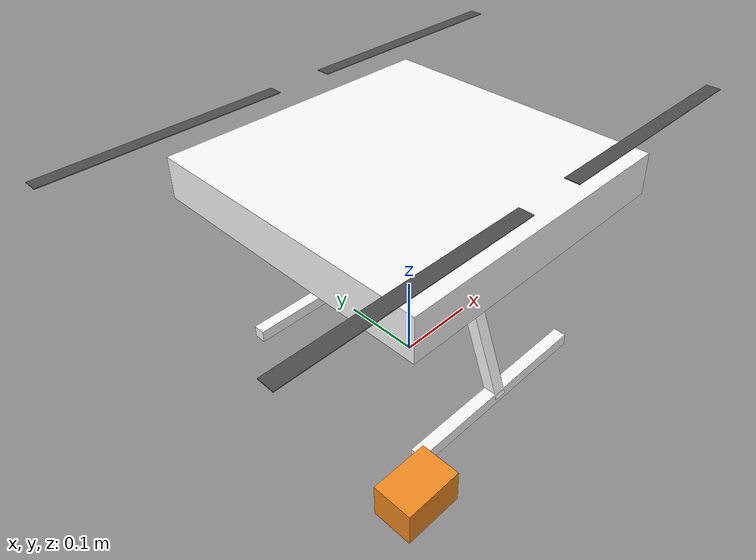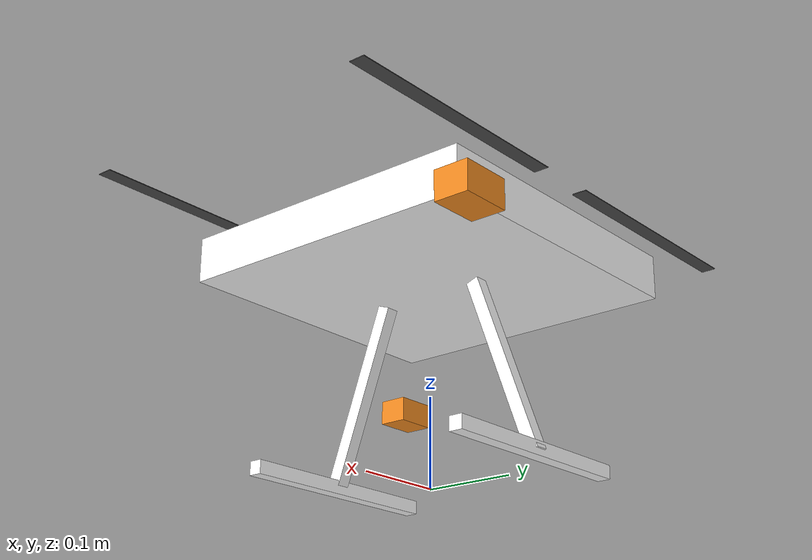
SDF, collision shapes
<?xml version="1.0" encoding="UTF-8"?>
<sdf version='1.9'>
  <model name='x500_base'>
    <pose>0 0 .24 0 0 0</pose>
    <self_collide>false</self_collide>
    <static>false</static>
    <link name="base_link">
      <inertial>
        <mass>2.0</mass>
        <inertia>
          <ixx>0.02166666666666667</ixx>
          <ixy>0</ixy>
          <ixz>0</ixz>
          <iyy>0.02166666666666667</iyy>
          <iyz>0</iyz>
          <izz>0.04000000000000001</izz>
        </inertia>
      </inertial>
      <gravity>true</gravity>
      <velocity_decay/>
      <visual name="base_link_visual">
        <pose>0 0 .025 0 0 3.141592654</pose>
        <geometry>
          <mesh>
            <scale>1 1 1</scale>
            <uri>model://x500_base/meshes/NXP-HGD-CF.dae</uri>
          </mesh>
        </geometry>
      </visual>
      <visual name="5010_motor_base_0">
        <pose>0.174 0.174 .032 0 0 -.45</pose>
        <geometry>
          <mesh>
            <scale>1 1 1</scale>
            <uri>model://x500_base/meshes/5010Base.dae</uri>
          </mesh>
        </geometry>
      </visual>
      <visual name="5010_motor_base_1">
        <pose>-0.174 0.174 .032 0 0 -.45</pose>
        <geometry>
          <mesh>
            <scale>1 1 1</scale>
            <uri>model://x500_base/meshes/5010Base.dae</uri>
          </mesh>
        </geometry>
      </visual>
      <visual name="5010_motor_base_2">
        <pose>0.174 -0.174 .032 0 0 -.45</pose>
        <geometry>
          <mesh>
            <scale>1 1 1</scale>
            <uri>model://x500_base/meshes/5010Base.dae</uri>
          </mesh>
        </geometry>
      </visual>
      <visual name="5010_motor_base_3">
        <pose>-0.174 -0.174 .032 0 0 -.45</pose>
        <geometry>
          <mesh>
            <scale>1 1 1</scale>
            <uri>model://x500_base/meshes/5010Base.dae</uri>
          </mesh>
        </geometry>
      </visual>
      <visual name="NXP_FMUK66_FRONT">
        <pose>0.047 .001 .043 1 0 1.57</pose>
        <cast_shadows>false</cast_shadows>
        <geometry>
          <plane>
            <normal>0 0 1</normal>
            <size>.013 .007</size>
          </plane>
        </geometry>
        <material>
          <diffuse>1.0 1.0 1.0</diffuse>
          <specular>1.0 1.0 1.0</specular>
          <pbr>
            <metal>
              <albedo_map>model://x500_base/materials/textures/nxp.png</albedo_map>
            </metal>
          </pbr>
        </material>
      </visual>
      <visual name="NXP_FMUK66_TOP">
        <pose>-0.023 0 .0515 0 0 -1.57</pose>
        <cast_shadows>false</cast_shadows>
        <geometry>
          <plane>
            <normal>0 0 1</normal>
            <size>.013 .007</size>
          </plane>
        </geometry>
        <material>
          <diffuse>1.0 1.0 1.0</diffuse>
          <specular>1.0 1.0 1.0</specular>
          <pbr>
            <metal>
              <albedo_map>model://x500_base/materials/textures/nxp.png</albedo_map>
            </metal>
          </pbr>
        </material>
      </visual>
      <visual name="RDDRONE_FMUK66_TOP">
        <pose>-.03 0 .0515 0 0 -1.57</pose>
        <cast_shadows>false</cast_shadows>
        <geometry>
          <plane>
            <normal>0 0 1</normal>
            <size>.032 .0034</size>
          </plane>
        </geometry>
        <material>
          <diffuse>1.0 1.0 1.0</diffuse>
          <specular>1.0 1.0 1.0</specular>
          <pbr>
            <metal>
              <albedo_map>model://x500_base/materials/textures/rd.png</albedo_map>
            </metal>
          </pbr>
        </material>
      </visual>
      <collision name="base_link_collision_0">
        <pose>0 0 .007 0 0 0</pose>
        <geometry>
          <box>
            <size>0.35355339059327373 0.35355339059327373 0.05</size>
          </box>
        </geometry>
        <surface>
          <contact>
            <ode>
              <min_depth>0.001</min_depth>
              <max_vel>0</max_vel>
            </ode>
          </contact>
          <friction>
            <ode/>
          </friction>
        </surface>
      </collision>
      <collision name="base_link_collision_1">
        <pose>0 -0.098 -.123 -0.35 0 0</pose>
        <geometry>
          <box>
            <size>0.015 0.015 0.21</size>
          </box>
        </geometry>
        <surface>
          <contact>
            <ode>
              <min_depth>0.001</min_depth>
              <max_vel>0</max_vel>
            </ode>
          </contact>
          <friction>
            <ode/>
          </friction>
        </surface>
      </collision>
      <collision name="base_link_collision_2">
        <pose>0 0.098 -.123 0.35 0 0</pose>
        <geometry>
          <box>
            <size>0.015 0.015 0.21</size>
          </box>
        </geometry>
        <surface>
          <contact>
            <ode>
              <min_depth>0.001</min_depth>
              <max_vel>0</max_vel>
            </ode>
          </contact>
          <friction>
            <ode/>
          </friction>
        </surface>
      </collision>
      <collision name="base_link_collision_3">
        <pose>0 -0.132 -.2195 0 0 0</pose>
        <geometry>
          <box>
            <size>0.25 0.015 0.015</size>
          </box>
        </geometry>
        <surface>
          <contact>
            <ode>
              <min_depth>0.001</min_depth>
              <max_vel>0</max_vel>
            </ode>
          </contact>
          <friction>
            <ode/>
          </friction>
        </surface>
      </collision>
      <collision name="base_link_collision_4">
        <pose>0 0.132 -.2195 0 0 0</pose>
        <geometry>
          <box>
            <size>0.25 0.015 0.015</size>
          </box>
        </geometry>
        <surface>
          <contact>
            <ode>
              <min_depth>0.001</min_depth>
              <max_vel>0</max_vel>
            </ode>
          </contact>
          <friction>
            <ode/>
          </friction>
        </surface>
      </collision>
      <sensor name="air_pressure_sensor" type="air_pressure">
        <always_on>1</always_on>
        <update_rate>50</update_rate>
        <air_pressure>
          <!-- Noise modeled after BMP390 -->
          <pressure>
            <noise type="gaussian">
              <mean>0</mean>
              <stddev>3</stddev>
            </noise>
          </pressure>
        </air_pressure>
      </sensor>
      <sensor name="magnetometer_sensor" type="magnetometer">
        <always_on>1</always_on>
        <update_rate>100</update_rate>
        <magnetometer>
          <!-- TODO: update to fix units and coordinate system when we move past Harmonic -->
          <!-- See https://github.com/gazebosim/gz-sim/pull/2460 -->
          <!-- 3mgauss RMS: NOTE: noise is in tesla but sensor reports data in gauss -->
          <!-- Noise modeled after IIS2MDC -->
          <x>
            <noise type="gaussian">
              <stddev>0.0001</stddev>
            </noise>
          </x>
          <y>
            <noise type="gaussian">
              <stddev>0.0001</stddev>
            </noise>
          </y>
          <z>
            <noise type="gaussian">
              <stddev>0.0001</stddev>
            </noise>
          </z>
        </magnetometer>
      </sensor>
      <sensor name="imu_sensor" type="imu">
        <always_on>1</always_on>
        <update_rate>250</update_rate>
        <imu>
          <angular_velocity>
            <!-- Noise modeled after IIM42653 -->
            <!-- 0.05 deg/s converted to rad/s -->
            <x>
              <noise type="gaussian">
                <mean>0.0</mean>
                <stddev>0.0008726646</stddev>
              </noise>
            </x>
            <y>
              <noise type="gaussian">
                <mean>0.0</mean>
                <stddev>0.0008726646</stddev>
              </noise>
            </y>
            <z>
              <noise type="gaussian">
                <mean>0.0</mean>
                <stddev>0.0008726646</stddev>
              </noise>
            </z>
          </angular_velocity>
          <linear_acceleration>
            <!-- Noise modeled after IIM42653 -->
            <!-- X & Y axis: 0.65 mg-rms converted to m/ss -->
            <x>
              <noise type="gaussian">
                <mean>0.0</mean>
                <stddev>0.00637</stddev>
              </noise>
            </x>
            <y>
              <noise type="gaussian">
                <mean>0.0</mean>
                <stddev>0.00637</stddev>
              </noise>
            </y>
            <!-- Z axis: 0.70 mg-rms converted to m/ss-->
            <z>
              <noise type="gaussian">
                <mean>0.0</mean>
                <stddev>0.00686</stddev>
              </noise>
            </z>
          </linear_acceleration>
        </imu>
      </sensor>
      <sensor name="navsat_sensor" type="navsat">
        <always_on>1</always_on>
        <update_rate>30</update_rate>
      </sensor>
    </link>
    <link name="rotor_0">
      <gravity>true</gravity>
      <self_collide>false</self_collide>
      <velocity_decay/>
      <pose>0.174 -0.174 0.06 0 0 0</pose>
      <inertial>
          <mass>0.016076923076923075</mass>
          <inertia>
            <ixx>3.8464910483993325e-07</ixx>
            <iyy>2.6115851691700804e-05</iyy>
            <izz>2.649858234714004e-05</izz>
          </inertia>
        </inertial>
      <visual name="rotor_0_visual">
        <pose>-0.022 -0.14638461538461536 -0.016 0 0 0</pose>
        <geometry>
          <mesh>
            <scale>0.8461538461538461 0.8461538461538461 0.8461538461538461</scale>
            <uri>model://x500_base/meshes/1345_prop_ccw.stl</uri>
          </mesh>
        </geometry>
        <material>
          <script>
            <name>Gazebo/DarkGrey</name>
            <uri>file://media/materials/scripts/gazebo.material</uri>
          </script>
        </material>
      </visual>
      <visual name="rotor_0_visual_motor_bell">
        <pose>0 0 -.032 0 0 0</pose>
        <geometry>
          <mesh>
            <scale>1 1 1</scale>
            <uri>model://x500_base/meshes/5010Bell.dae</uri>
          </mesh>
        </geometry>
      </visual>
      <collision name="rotor_0_collision">
        <pose>0 0 0 0 0 0 </pose>
        <geometry>
          <box>
            <size>0.2792307692307692 0.016923076923076923 0.0008461538461538462</size>
          </box>
        </geometry>
        <surface>
          <contact>
            <ode>
              <min_depth>0.001</min_depth>
              <max_vel>0</max_vel>
            </ode>
          </contact>
          <friction>
            <ode/>
          </friction>
        </surface>
      </collision>
    </link>
    <joint name="rotor_0_joint" type="revolute">
      <parent>base_link</parent>
      <child>rotor_0</child>
      <axis>
        <xyz>0 0 1</xyz>
        <limit>
          <lower>-1e+16</lower>
          <upper>1e+16</upper>
        </limit>
        <dynamics>
          <spring_reference>0</spring_reference>
          <spring_stiffness>0</spring_stiffness>
        </dynamics>
      </axis>
    </joint>
    <link name="rotor_1">
      <gravity>true</gravity>
      <self_collide>false</self_collide>
      <velocity_decay/>
      <pose>-0.174 0.174 0.06 0 0 0</pose>
      <inertial>
          <mass>0.016076923076923075</mass>
          <inertia>
            <ixx>3.8464910483993325e-07</ixx>
            <iyy>2.6115851691700804e-05</iyy>
            <izz>2.649858234714004e-05</izz>
          </inertia>
        </inertial>
      <visual name="rotor_1_visual">
        <pose>-0.022 -0.14638461538461536 -0.016 0 0 0</pose>
        <geometry>
          <mesh>
            <scale>0.8461538461538461 0.8461538461538461 0.8461538461538461</scale>
            <uri>model://x500_base/meshes/1345_prop_ccw.stl</uri>
          </mesh>
        </geometry>
        <material>
          <script>
            <name>Gazebo/DarkGrey</name>
            <uri>file://media/materials/scripts/gazebo.material</uri>
          </script>
        </material>
      </visual>
      <visual name="rotor_1_visual_motor_top">
        <pose>0 0 -.032 0 0 0</pose>
        <geometry>
          <mesh>
            <scale>1 1 1</scale>
            <uri>model://x500_base/meshes/5010Bell.dae</uri>
          </mesh>
        </geometry>
      </visual>
      <collision name="rotor_1_collision">
        <pose>0 0 0 0 0 0 </pose>
        <geometry>
          <box>
            <size>0.2792307692307692 0.016923076923076923 0.0008461538461538462</size>
          </box>
        </geometry>
        <surface>
          <contact>
            <ode>
              <min_depth>0.001</min_depth>
              <max_vel>0</max_vel>
            </ode>
          </contact>
          <friction>
            <ode/>
          </friction>
        </surface>
      </collision>
    </link>
    <joint name="rotor_1_joint" type="revolute">
      <parent>base_link</parent>
      <child>rotor_1</child>
      <axis>
        <xyz>0 0 1</xyz>
        <limit>
          <lower>-1e+16</lower>
          <upper>1e+16</upper>
        </limit>
        <dynamics>
          <spring_reference>0</spring_reference>
          <spring_stiffness>0</spring_stiffness>
        </dynamics>
      </axis>
    </joint>
    <link name="rotor_2">
      <gravity>true</gravity>
      <self_collide>false</self_collide>
      <velocity_decay/>
      <pose>0.174 0.174 0.06 0 0 0</pose>
      <inertial>
          <mass>0.016076923076923075</mass>
          <inertia>
            <ixx>3.8464910483993325e-07</ixx>
            <iyy>2.6115851691700804e-05</iyy>
            <izz>2.649858234714004e-05</izz>
          </inertia>
        </inertial>
      <visual name="rotor_2_visual">
        <pose>-0.022 -0.14638461538461536 -0.016 0 0 0</pose>
        <geometry>
          <mesh>
            <scale>0.8461538461538461 0.8461538461538461 0.8461538461538461</scale>
            <uri>model://x500_base/meshes/1345_prop_cw.stl</uri>
          </mesh>
        </geometry>
        <material>
          <script>
            <name>Gazebo/DarkGrey</name>
            <uri>file://media/materials/scripts/gazebo.material</uri>
          </script>
        </material>
      </visual>
      <visual name="rotor_2_visual_motor_top">
        <pose>0 0 -.032 0 0 0</pose>
        <geometry>
          <mesh>
            <scale>1 1 1</scale>
            <uri>model://x500_base/meshes/5010Bell.dae</uri>
          </mesh>
        </geometry>
      </visual>
      <collision name="rotor_2_collision">
        <pose>0 0 0 0 0 0 </pose>
        <geometry>
          <box>
            <size>0.2792307692307692 0.016923076923076923 0.0008461538461538462</size>
          </box>
        </geometry>
        <surface>
          <contact>
            <ode>
              <min_depth>0.001</min_depth>
              <max_vel>0</max_vel>
            </ode>
          </contact>
          <friction>
            <ode/>
          </friction>
        </surface>
      </collision>
    </link>
    <joint name="rotor_2_joint" type="revolute">
      <parent>base_link</parent>
      <child>rotor_2</child>
      <axis>
        <xyz>0 0 1</xyz>
        <limit>
          <lower>-1e+16</lower>
          <upper>1e+16</upper>
        </limit>
        <dynamics>
          <spring_reference>0</spring_reference>
          <spring_stiffness>0</spring_stiffness>
        </dynamics>
      </axis>
    </joint>
    <link name="rotor_3">
      <gravity>true</gravity>
      <self_collide>false</self_collide>
      <velocity_decay/>
      <pose>-0.174 -0.174 0.06 0 0 0</pose>
      <inertial>
          <mass>0.016076923076923075</mass>
          <inertia>
            <ixx>3.8464910483993325e-07</ixx>
            <iyy>2.6115851691700804e-05</iyy>
            <izz>2.649858234714004e-05</izz>
          </inertia>
        </inertial>
      <visual name="rotor_3_visual">
        <pose>-0.022 -0.14638461538461536 -0.016 0 0 0</pose>
        <geometry>
          <mesh>
            <scale>0.8461538461538461 0.8461538461538461 0.8461538461538461</scale>
            <uri>model://x500_base/meshes/1345_prop_cw.stl</uri>
          </mesh>
        </geometry>
        <material>
          <script>
            <name>Gazebo/DarkGrey</name>
            <uri>file://media/materials/scripts/gazebo.material</uri>
          </script>
        </material>
      </visual>
      <visual name="rotor_3_visual_motor_top">
        <pose>0 0 -.032 0 0 0</pose>
        <geometry>
          <mesh>
            <scale>1 1 1</scale>
            <uri>model://x500_base/meshes/5010Bell.dae</uri>
          </mesh>
        </geometry>
      </visual>
      <collision name="rotor_3_collision">
        <pose>0 0 0 0 0 0 </pose>
        <geometry>
          <box>
            <size>0.2792307692307692 0.016923076923076923 0.0008461538461538462</size>
          </box>
        </geometry>
        <surface>
          <contact>
            <ode>
              <min_depth>0.001</min_depth>
              <max_vel>0</max_vel>
            </ode>
          </contact>
          <friction>
            <ode/>
          </friction>
        </surface>
      </collision>
    </link>

    <joint name="rotor_3_joint" type="revolute">
      <parent>base_link</parent>
      <child>rotor_3</child>
      <axis>
        <xyz>0 0 1</xyz>
        <limit>
          <lower>-1e+16</lower>
          <upper>1e+16</upper>
        </limit>
        <dynamics>
          <spring_reference>0</spring_reference>
          <spring_stiffness>0</spring_stiffness>
        </dynamics>
      </axis>
    </joint>

    <link name="uwb_tag_1">
      <pose>-0.24 -0.24 -0.06 0 0 0</pose> <!-- Tag position relative to base_link -->
      <inertial>
        <mass>0.0001</mass> <!-- Very small mass -->
        <inertia>
          <ixx>1e-6</ixx>
          <iyy>1e-6</iyy>
          <izz>1e-6</izz>
          <ixy>0</ixy>
          <ixz>0</ixz>
          <iyz>0</iyz>
        </inertia>
      </inertial>
      <visual name="uwb_tag_1_mesh_vis">
        <pose>0 0 0 0 0 0</pose>
        <geometry>
          <mesh>
            <uri>model://x500_base/meshes/uwb_tag_eliko.stl</uri>
            <scale>1 1 1</scale>
          </mesh>
        </geometry>
        <material>
          <ambient>0.96 0.55 0.13 1</ambient>
          <diffuse>0.96 0.55 0.13 1</diffuse>
        </material>
      </visual>
      <visual name="uwb_tag_1_bar_vis">
        <pose>0.12 0.12 0.03 -1.32582 0.770244 -0.613048</pose>
        <geometry>
          <cylinder>
            <radius>0.0035</radius>
            <length>0.344674</length>
          </cylinder>
        </geometry>
        <material>
          <ambient>0.24 0.24 0.24 1</ambient>
          <diffuse>0.24 0.24 0.24 1</diffuse>
        </material>
      </visual>
      <collision name="uwb_tag_1_collision">
        <pose>0 0 0 0 0 0</pose>
        <geometry>
          <box>
            <size>0.052 0.036 0.03</size>
          </box>
        </geometry>
      </collision>
    </link>

    <joint name="uwb_tag_1_joint" type="fixed">
      <parent>base_link</parent>
      <child>uwb_tag_1</child>
    </joint>

    <link name="uwb_tag_2">
      <pose>0.24 0.24 -0.06 0 0 0</pose> <!-- Tag position relative to base_link -->
      <inertial>
        <mass>0.0001</mass> <!-- Very small mass -->
        <inertia>
          <ixx>1e-6</ixx>
          <iyy>1e-6</iyy>
          <izz>1e-6</izz>
          <ixy>0</ixy>
          <ixz>0</ixz>
          <iyz>0</iyz>
        </inertia>
      </inertial>
      <visual name="uwb_tag_2_mesh_vis">
        <pose>0 0 0 0 0 0</pose>
        <geometry>
          <mesh>
            <uri>model://x500_base/meshes/uwb_tag_eliko.stl</uri>
            <scale>1 1 1</scale>
          </mesh>
        </geometry>
        <material>
          <ambient>0.96 0.55 0.13 1</ambient>
          <diffuse>0.96 0.55 0.13 1</diffuse>
        </material>
      </visual>
      <visual name="uwb_tag_2_bar_vis">
        <pose>-0.12 -0.12 0.03 1.32582 -0.770244 -0.613048</pose>
        <geometry>
          <cylinder>
            <radius>0.0035</radius>
            <length>0.344674</length>
          </cylinder>
        </geometry>
        <material>
          <ambient>0.24 0.24 0.24 1</ambient>
          <diffuse>0.24 0.24 0.24 1</diffuse>
        </material>
      </visual>
      <collision name="uwb_tag_2_collision">
        <pose>0 0 0 0 0 0</pose>
        <geometry>
          <box>
            <size>0.052 0.036 0.03</size>
          </box>
        </geometry>
      </collision>
    </link>

    <joint name="uwb_tag_2_joint" type="fixed">
      <parent>base_link</parent>
      <child>uwb_tag_2</child>
    </joint>

  </model>
</sdf>
